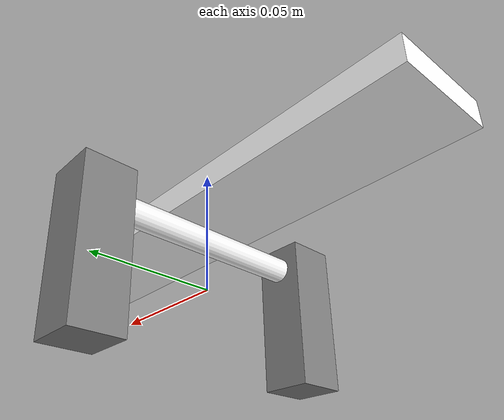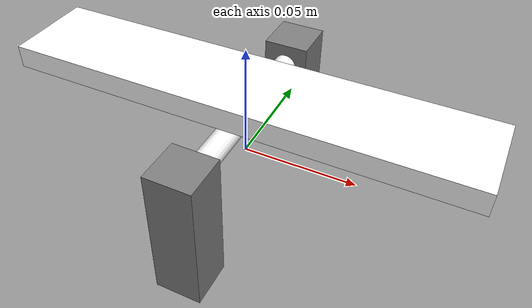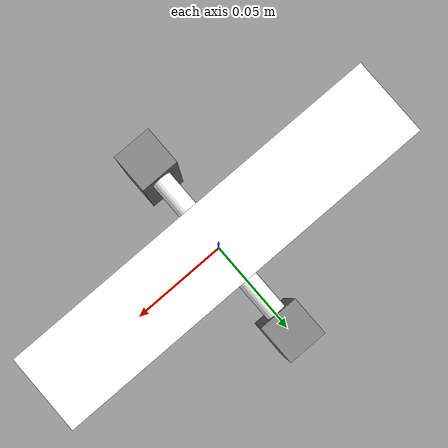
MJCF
<mujoco>
  <compiler meshdir="assets/meshes" texturedir="assets/textures" autolimits="true"/>

  <asset>

  </asset>

  <default>

        <!-- Ball -->
        <default class="seasaw_mount">
          <geom  type="box" size="0.01 0.01 0.03"/>
        </default>

  </default>

  <worldbody>

        <body name="seasaw" pos="0 0 0" euler="0 0 0">

		<geom class="seasaw_mount" pos="0 0.05 0"/>
		<geom class="seasaw_mount" pos="0 -0.05 0"/>
      <body>

    <joint type="hinge"  axis="0 1 0"  pos= "0 0 0.02"    />

        <geom type="cylinder" size="0.005 0.05" pos="0 0 0.02" euler="90 0 0" rgba="1 1 1 1"/>
        <geom type="box" size="0.1 0.02 0.005" pos="0 0 0.03" friction="1" rgba="1 1 1 1"/>
      </body>

        </body>

  </worldbody>

</mujoco>
